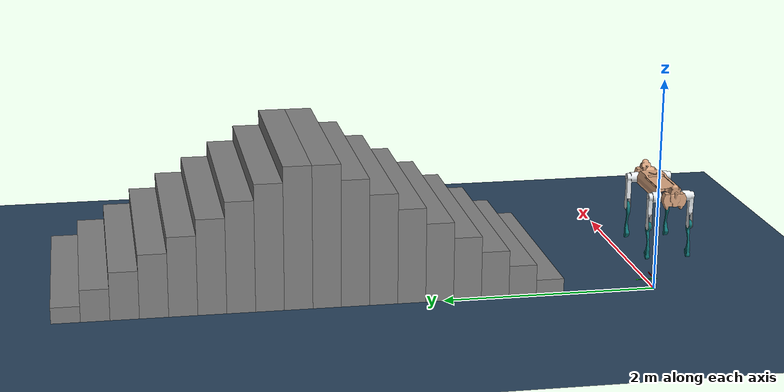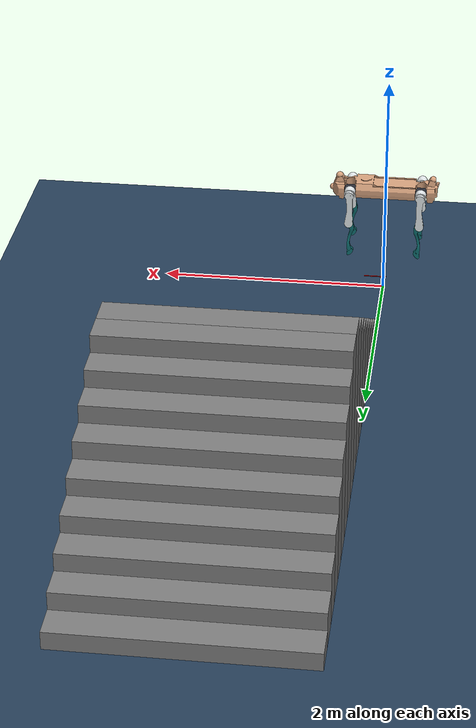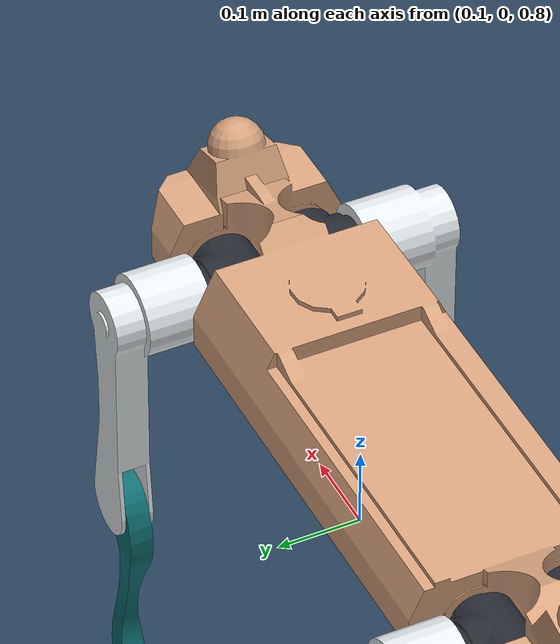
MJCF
<mujoco model="dg_engineer scene">
    <include file="dg_engineer.xml"/>
    <statistic center="0 0 0.1" extent="0.8"/>
    <visual>
        <headlight diffuse="0.6 0.6 0.6" ambient="0.3 0.3 0.3" specular="0 0 0"/>
        <rgba haze="0.15 0.25 0.35 1"/>
        <global azimuth="-130" elevation="-20"/>
    </visual>
    <asset>
        <texture type="skybox" builtin="gradient" rgb1="0.3 0.5 0.7" rgb2="0 0 0" width="512" height="3072"/>
        <texture type="2d" name="groundplane" builtin="checker" mark="edge" rgb1="0.2 0.3 0.4" rgb2="0.1 0.2 0.3"
                 markrgb="0.8 0.8 0.8" width="300" height="300"/>
        <material name="groundplane" texture="groundplane" texuniform="true" texrepeat="5 5" reflectance="0.2"/>
    </asset>
    <worldbody>
        <geom name="floor" size="0 0 0.05" type="plane" material="groundplane"/>

        <body mocap="true" name="esti_indicator" pos="0.0 0.0 0.1">
            <site pos="0 0 0.075" size="0.003 0.003 0.1" type="box" name="mocap_left_site1" rgba="0 0 1 1"/>
            <site pos="0 0.075 0" size="0.003 0.1 0.003" type="box" name="mocap_left_site2" rgba="0 1 0 1"/>
            <site pos="0.075 0 0" size="0.1 0.003 0.003" type="box" name="mocap_left_site3" rgba="1 0 0 1"/>
        </body>

        <body mocap="true" name="start_pos" pos="0.0 0.0 0.1">
            <site pos="0 0 0.075" size="0.003 0.003 0.1" type="box" name="start_pos1" rgba="0 0 1 1"/>
            <site pos="0 0.075 0" size="0.003 0.1 0.003" type="box" name="start_pos2" rgba="0 1 0 1"/>
            <site pos="0.075 0 0" size="0.1 0.003 0.003" type="box" name="start_pos3" rgba="1 0 0 1"/>
        </body>

<!--        futian stairs-->
        <geom size="1 0.13 0.075" pos="1 1 0.075" quat="1 0 0 0" type="box" priority="2" condim="6" solimp="0.5 0.95 0.001 0.5 2"
              friction="0.8 0.02 0.01" group="1"/>
        <geom size="1 0.13 0.15" pos="1 1.26 0.15" quat="1 0 0 0" type="box" priority="2" condim="6" solimp="0.5 0.95 0.001 0.5 2"
              friction="0.8 0.02 0.01" group="1"/>
        <geom size="1 0.13 0.225" pos="1 1.52 0.225" quat="1 0 0 0" type="box" priority="2" condim="6" solimp="0.5 0.95 0.001 0.5 2"
              friction="0.8 0.02 0.01" group="1"/>
        <geom size="1 0.13 0.3" pos="1 1.78 0.3" quat="1 0 0 0" type="box" priority="2" condim="6" solimp="0.5 0.95 0.001 0.5 2"
              friction="0.8 0.02 0.01" group="1"/>
        <geom size="1 0.13 0.375" pos="1 2.04 0.375" quat="1 0 0 0" type="box" priority="2" condim="6" solimp="0.5 0.95 0.001 0.5 2"
              friction="0.8 0.02 0.01" group="1"/>
        <geom size="1 0.13 0.45" pos="1 2.3 0.45" quat="1 0 0 0" type="box" priority="2" condim="6" solimp="0.5 0.95 0.001 0.5 2"
              friction="0.8 0.02 0.01" group="1"/>
        <geom size="1 0.13 0.525" pos="1 2.56 0.525" quat="1 0 0 0" type="box" priority="2" condim="6" solimp="0.5 0.95 0.001 0.5 2"
              friction="0.8 0.02 0.01" group="1"/>
        <geom size="1 0.13 0.6" pos="1 2.82 0.6" quat="1 0 0 0" type="box" priority="2" condim="6" solimp="0.5 0.95 0.001 0.5 2"
              friction="0.8 0.02 0.01" group="1"/>
        <geom size="1 0.13 0.675" pos="1 3.08 0.675" quat="1 0 0 0" type="box" priority="2" condim="6" solimp="0.5 0.95 0.001 0.5 2"
              friction="0.8 0.02 0.01" group="1"/>

        <geom size="1 0.13 0.075" pos="1 5.42 0.075" quat="1 0 0 0" type="box" priority="2" condim="6" solimp="0.5 0.95 0.001 0.5 2"
              friction="0.8 0.02 0.01" group="1"/>
        <geom size="1 0.13 0.15" pos="1  5.16 0.15" quat="1 0 0 0" type="box" priority="2" condim="6" solimp="0.5 0.95 0.001 0.5 2"
              friction="0.8 0.02 0.01" group="1"/>
        <geom size="1 0.13 0.225" pos="1 4.9 0.225" quat="1 0 0 0" type="box" priority="2" condim="6" solimp="0.5 0.95 0.001 0.5 2"
              friction="0.8 0.02 0.01" group="1"/>
        <geom size="1 0.13 0.3" pos="1 4.64 0.3" quat="1 0 0 0" type="box" priority="2" condim="6" solimp="0.5 0.95 0.001 0.5 2"
              friction="0.8 0.02 0.01" group="1"/>
        <geom size="1 0.13 0.375" pos="1 4.38 0.375" quat="1 0 0 0" type="box" priority="2" condim="6" solimp="0.5 0.95 0.001 0.5 2"
              friction="0.8 0.02 0.01" group="1"/>
        <geom size="1 0.13 0.45" pos="1 4.12 0.45" quat="1 0 0 0" type="box" priority="2" condim="6" solimp="0.5 0.95 0.001 0.5 2"
              friction="0.8 0.02 0.01" group="1"/>
        <geom size="1 0.13 0.525" pos="1 3.86 0.525" quat="1 0 0 0" type="box" priority="2" condim="6" solimp="0.5 0.95 0.001 0.5 2"
              friction="0.8 0.02 0.01" group="1"/>
        <geom size="1 0.13 0.6" pos="1 3.6 0.6" quat="1 0 0 0" type="box" priority="2" condim="6" solimp="0.5 0.95 0.001 0.5 2"
              friction="0.8 0.02 0.01" group="1"/>
        <geom size="1 0.13 0.675" pos="1 3.34 0.675" quat="1 0 0 0" type="box" priority="2" condim="6" solimp="0.5 0.95 0.001 0.5 2"
              friction="0.8 0.02 0.01" group="1"/>
    </worldbody>
</mujoco>

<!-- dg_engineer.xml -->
<!--Please note the -->
<mujoco model="dg_engineer">
    <compiler angle="radian" meshdir="assets" autolimits="true" eulerseq="ZYX"/>
    <option cone="elliptic" impratio="100" integrator="implicitfast" timestep="0.001"/>

    <visual>
        <global ellipsoidinertia="true"/>
    </visual>
    <!--    mujoco default properties-->
    <default>
        <default class="dg_engineer">
            <geom friction="0.6" margin="0.00001" condim="1"/>
            <!--            armature: inertia of rotors; joint global axis 0.0000097913844*gr^2-->
            <joint axis="0 1 0" damping="0.01" armature="0.0092" frictionloss="0.01" actuatorfrcrange="-43 43"/>
            <default class="abad">
                <!--                joint range-->
                <joint pos="0 0 0" axis="1 0 0" range="-1.0472 1.0472"/>
                <!--                control position -->
                <motor ctrlrange="-43 43"/>
            </default>
            <default class="hip">
                <joint range="-3.1415926 3.1415926"/>
                <motor ctrlrange="-43 43"/>
            </default>
            <default class="knee">
                <joint range="-2.9 2.9"/>
                <!--                output torque range, knees with larger gear ratio-->
                <motor forcerange="-86 86" ctrlrange="-86 86"/>
            </default>
            <!--            visual mesh for sensors and markers-->
            <default class="visual">
                <geom type="mesh" contype="0" conaffinity="0" group="2"/>
            </default>
            <!--            build collision model-->
            <default class="collision">
                <geom group="3" type="capsule"/>
                <default class="foot">
                    <geom type="sphere" size="0.024" priority="1" condim="6"
                          friction="0.5 0.02 0.01"
                          pos="0 0 -0.191"/>
                </default>
                <!--                body is based on local frame-->
                <default class="thigh_fl1">
                    <geom size="0.048 0.05685" pos="0 0.05735 0" quat="1 1 0 0" type="cylinder"/>
                </default>
                <default class="thigh_fl2">
                    <geom size="0.025 0.08295" pos="0 0.1282 -0.10795" quat="1 0 0 0" type="capsule"/>
                </default>

                <default class="thigh_fr1">
                    <geom size="0.048 0.05685" pos="0 -0.05735 0" quat="1 1 0 0" type="cylinder"/>
                </default>
                <default class="thigh_fr2">
                    <geom size="0.025 0.08295" pos="0 -0.1282 -0.10795" quat="1 0 0 0" type="capsule"/>
                </default>

                <default class="thigh_rl1">
                    <geom size="0.048 0.05685" pos="0 0.05735 0" quat="1 1 0 0" type="cylinder"/>
                </default>
                <default class="thigh_rl2">
                    <geom size="0.025 0.08295" pos="0 0.1282 -0.10795" quat="1 0 0 0" type="capsule"/>
                </default>

                <default class="thigh_rr1">
                    <geom size="0.048 0.05685" pos="0 -0.05735 0" quat="1 1 0 0" type="cylinder"/>
                </default>
                <default class="thigh_rr2">
                    <geom size="0.025 0.08295" pos="0 -0.1282 -0.10795" quat="1 0 0 0" type="capsule"/>
                </default>

                <default class="calf">
                    <geom size="0.01 0.0855" pos="0 0 -0.0955" quat="1 0 0 0" type="capsule"/>
                </default>
            </default>
        </default>
    </default>

    <asset>
        <material name="dg_engineer" rgba="0.1 0.1 0.1 1"/>
        <mesh class="dg_engineer" file="base_link.STL"/>
        <mesh class="dg_engineer" file="fl_abad_link.STL"/>
        <mesh class="dg_engineer" file="fl_hip_link.STL"/>
        <mesh class="dg_engineer" file="fl_knee_link.STL"/>
        <mesh class="dg_engineer" file="fr_abad_link.STL"/>
        <mesh class="dg_engineer" file="fr_hip_link.STL"/>
        <mesh class="dg_engineer" file="fr_knee_link.STL"/>
        <mesh class="dg_engineer" file="rl_abad_link.STL"/>
        <mesh class="dg_engineer" file="rl_hip_link.STL"/>
        <mesh class="dg_engineer" file="rl_knee_link.STL"/>
        <mesh class="dg_engineer" file="rr_abad_link.STL"/>
        <mesh class="dg_engineer" file="rr_hip_link.STL"/>
        <mesh class="dg_engineer" file="rr_knee_link.STL"/>
    </asset>

    <worldbody>
        <body name="base" pos="0 0 1.0" childclass="dg_engineer">
            <camera name="tracking" mode="trackcom" pos="0 -1 0.8" xyaxes="1 0 0 0 1 1"/>
            <!--            type of the site is sphere by default-->
            <site name="head" pos="0.3 0 0" rgba="1 0 0 1" size="0.02" group="0"/>
            <inertial pos="0.02677303 0.000 0.00632505"
                      mass="21.5654" fullinertia="0.10767656 2.82545723 2.85571634 0.00000033 -0.00871520 -0.00000024"/>
            <freejoint/>
            <geom class="visual" pos="0 0.0 0" mesh="base_link" rgba="0.847058824 0.643137255 0.498039216 1"/>
            <geom class="collision" type="box" size="0.2623 0.125 0.056"/>
<!--            &lt;!&ndash;            build four abad motors&ndash;&gt;-->
            <geom class="collision" type="sphere" pos="0.3905 -0.060 -0.0718" size="0.020"/>
            <geom class="collision" type="sphere" pos="-0.3905 -0.060 -0.0718" size="0.020"/>
            <geom class="collision" type="sphere" pos="0.3905 0.060 -0.0718" size="0.020"/>
            <geom class="collision" type="sphere" pos="-0.3905 0.060 -0.0718" size="0.020"/>
<!--            &lt;!&ndash;            build the pads&ndash;&gt;-->
            <site name="imu" pos="0 0 0"/>
            <body name="fr_abad" pos="0.314 -0.050 0" quat="1 0 0 0">
                <inertial pos="-0.00001787 -0.00607236 -0.00008968"
                          mass="0.7766" fullinertia="0.00066364 0.00093712 0.001006375 0 0 -0.00000289"/>
                <site name="fr_abad_torque_site" pos="0 0 0"/>
                <joint class="abad" name="fr_abad_joint"/>
                <geom class="visual" mesh="fr_abad_link" quat="1 0 0 0" rgba="0.152941176 0.160784314 0.196078431 1"/>
                <body name="fr_hip" pos="0 -0.1408 0" quat="1 0 0 0">
                    <inertial pos="-0.00142239 0.0245184 -0.06737029" mass="2.1028"
                              fullinertia="0.03392455 0.03116087 0.00483257 0.00001021 -0.00038283 0.00004691"/>

                    <site name="fr_hip_torque_site" pos="0 0 0"/>
                    <joint class="hip" name="fr_hip_joint"/>
                    <geom class="visual" mesh="fr_hip_link" rgba="0.905882353 0.925490196 0.937254902 1"/>
                    <body name="fr_knee" pos="0.0 0.0 -0.272">
                        <inertial pos="-0.00804831 0.00000107 -0.12689414"
                                  mass="0.4842"
                                  fullinertia="0.01527064 0.01543121 0.00022068 0 -0.00063844 0.00000003"/>
                        <joint class="knee" name="fr_knee_joint"/>
                        <site name="fr_knee_torque_site" pos="0 0 0"/>
                        <geom class="visual" mesh="fr_knee_link" rgba="0.058823529 0.443137255 0.450980392 1"/>
                        <geom name="fr_calf_collision" type="mesh" mesh="fr_knee_link" priority="1" condim="6" solimp="0.5 0.95 0.001 0.5 2"
                              friction="0.8 0.02 0.01" group="3"/>
                        <site name="fr_foot_site" rgba="0.941176471 0.364705882 0.368627451 1" pos="0 0 -0.272"
                              type="sphere" size="0.024" group="3"/>
                    </body>
                </body>
            </body>

            <body name="fl_abad" pos="0.314 0.050 0" quat="1 0 0 0">
                <inertial pos="0.00001787 0.00607236 -0.00008968"
                          mass="0.7766" fullinertia="0.00066364 0.00093712 0.001006375 0 0 0.00000289"/>
                <joint class="abad" name="fl_abad_joint"/>
                <site name="fl_abad_torque_site" pos="0 0 0"/>
                <geom class="visual" mesh="fl_abad_link" quat="1 0 0 0" rgba="0.152941176 0.160784314 0.196078431 1"/>
                <body name="fl_hip" pos="0 0.1408 0" quat="1 0 0 0">
                    <inertial pos="-0.00142239 -0.0245184 -0.06737029" mass="2.1028"
                              fullinertia="0.03392455 0.03116087 0.00483257 -0.00001021 -0.00038283 -0.00004691"/>
                    <joint class="hip" name="fl_hip_joint"/>
                    <site name="fl_hip_torque_site" pos="0 0 0"/>
                    <geom class="visual" mesh="fl_hip_link" rgba="0.905882353 0.925490196 0.937254902 1"/>
                    <body name="fl_knee" pos="0.0 0.0 -0.272">
                        <inertial pos="-0.00804831 0.00000107 -0.12689414"
                                  mass="0.4842"
                                  fullinertia="0.01527064 0.01543121 0.00022068 0 -0.00063844 0.00000002"/>
                        <joint class="knee" name="fl_knee_joint"/>
                        <site name="fl_knee_torque_site" pos="0 0 0"/>
                        <geom class="visual" mesh="fl_knee_link" rgba="0.058823529 0.443137255 0.450980392 1"/>
                        <geom name="fl_calf_collision" type="mesh" mesh="fl_knee_link" priority="1" condim="6" solimp="0.5 0.95 0.001 0.5 2"
                              friction="0.6 0.02 0.01" group="3"/>
                        <site name="fl_foot_site" rgba="0.941176471 0.364705882 0.368627451 1" pos="0 0 -0.272"
                              type="sphere" size="0.024" group="3"/>
                    </body>
                </body>
            </body>

            <body name="rr_abad" pos="-0.314 -0.050 0" quat="1 0 0 0">
                <inertial pos="-0.00001787 -0.00607236 -0.00008968"
                          mass="0.7766" fullinertia="0.00066364 0.00093712 0.001006375 0 0 -0.00000289"/>
                <joint class="abad" name="rr_abad_joint"/>
                <site name="rr_abad_torque_site" pos="0 0 0"/>
                <geom class="visual" mesh="rr_abad_link" quat="1 0 0 0" rgba="0.152941176 0.160784314 0.196078431 1"/>
                <body name="rr_hip" pos="0 -0.1408 0">
                    <inertial pos="0.00142239 0.0245184 -0.06737029" mass="2.1028"
                              fullinertia="0.03392455 0.03116087 0.00483257 -0.00001021 0.00038283 0.00004691"/>
                    <joint class="hip" name="rr_hip_joint"/>
                    <site name="rr_hip_torque_site" pos="0 0 0"/>
                    <geom class="visual" mesh="rr_hip_link" rgba="0.905882353 0.925490196 0.937254902 1"/>
                    <body name="rr_knee" pos="0.0 0.0 -0.272">
                        <inertial pos="0.00804831 -0.00000107 -0.12689414" mass="0.4842"
                                  fullinertia="0.01527064 0.01543121 0.00022068 0 0.00063844 -0.00000002"/>
                        <joint class="knee" name="rr_knee_joint"/>
                        <site name="rr_knee_torque_site" pos="0 0 0"/>
                        <geom class="visual" mesh="rr_knee_link" rgba="0.058823529 0.443137255 0.450980392 1"/>
                        <geom name="rr_calf_collision" type="mesh" mesh="rr_knee_link" priority="1" condim="6" solimp="0.5 0.95 0.001 0.5 2"
                              friction="0.6 0.02 0.01" group="3"/>
                        <site name="rr_foot_site" rgba="0.941176471 0.364705882 0.368627451 1" pos="0 0 -0.272"
                              type="sphere" size="0.024" group="3"/>
                    </body>
                </body>
            </body>

            <body name="rl_abad" pos="-0.314 0.050 0" quat="1 0 0 0">
                <inertial pos="0.00001787 0.00607236 -0.00008968"
                          mass="0.7766" fullinertia="0.00066364 0.00093712 0.001006375 0 0 0.00000289"/>
                <joint class="abad" name="rl_abad_joint"/>
                <site name="rl_abad_torque_site" pos="0 0 0"/>
                <geom class="visual" mesh="rl_abad_link" quat="1 0 0 0" rgba="0.152941176 0.160784314 0.196078431 1"/>

                <body name="rl_hip" pos="0 0.1408 0" quat="1 0 0 0">
                    <inertial pos="0.00142239 -0.0245184 -0.06737029" mass="2.1028"
                              fullinertia="0.03392455 0.03116087 0.00483257 0.00001021 0.00038283 -0.00004691"/>
                    <joint class="hip" name="rl_hip_joint"/>
                    <site name="rl_hip_torque_site" pos="0 0 0"/>
                    <geom class="visual" mesh="rl_hip_link" rgba="0.905882353 0.925490196 0.937254902 1"/>
                    <body name="rl_knee" pos="0.0 0.0 -0.272">
                        <inertial pos="0.00804831 -0.00000107 -0.12689414"
                                  mass="0.4842"
                                  fullinertia="0.01527064 0.01543121 0.00022068 0 0.00063844 -0.00000002"/>
                        <joint class="knee" name="rl_knee_joint"/>
                        <site name="rl_knee_torque_site" pos="0 0 0"/>
                        <geom class="visual" mesh="rl_knee_link" rgba="0.058823529 0.443137255 0.450980392 1"/>
                        <geom name="rl_calf_collision" type="mesh" mesh="rl_knee_link" priority="1" condim="6" solimp="0.5 0.95 0.001 0.5 2"
                              friction="0.6 0.02 0.01" group="3"/>
                        <site name="rl_foot_site" rgba="0.941176471 0.364705882 0.368627451 1" pos="0 0 -0.272"
                              type="sphere" size="0.024" group="3"/>
                    </body>
                </body>
            </body>
        </body>
    </worldbody>

    <actuator>
        <motor class="abad" name="FR_ABAD" joint="fr_abad_joint"/>
        <motor class="hip" name="FR_HIP" joint="fr_hip_joint"/>
        <motor class="knee" name="FR_KNEE" joint="fr_knee_joint"/>
        <motor class="abad" name="FL_ABAD" joint="fl_abad_joint"/>
        <motor class="hip" name="FL_HIP" joint="fl_hip_joint"/>
        <motor class="knee" name="FL_KNEE" joint="fl_knee_joint"/>
        <motor class="abad" name="RR_ABAD" joint="rr_abad_joint"/>
        <motor class="hip" name="RR_HIP" joint="rr_hip_joint"/>
        <motor class="knee" name="RR_KNEE" joint="rr_knee_joint"/>
        <motor class="abad" name="RL_ABAD" joint="rl_abad_joint"/>
        <motor class="hip" name="RL_HIP" joint="rl_hip_joint"/>
        <motor class="knee" name="RL_KNEE" joint="rl_knee_joint"/>
    </actuator>
    <sensor>
        <gyro name="body_gyro" site="imu"/>
        <framequat name="body_quat" objtype="site" objname="imu"/>
        <accelerometer name="body_acc" site="imu"/>
        <torque name="fr_abad_torque_sensor" site="fr_abad_torque_site"/>
        <torque name="fr_hip_torque_sensor" site="fr_hip_torque_site"/>
        <torque name="fr_knee_torque_sensor" site="fr_knee_torque_site"/>

        <torque name="fl_abad_torque_sensor" site="fl_abad_torque_site"/>
        <torque name="fl_hip_torque_sensor" site="fl_hip_torque_site"/>
        <torque name="fl_knee_torque_sensor" site="fl_knee_torque_site"/>

        <torque name="rr_abad_torque_sensor" site="rr_abad_torque_site"/>
        <torque name="rr_hip_torque_sensor" site="rr_hip_torque_site"/>
        <torque name="rr_knee_torque_sensor" site="rr_knee_torque_site"/>

        <torque name="rl_abad_torque_sensor" site="rl_abad_torque_site"/>
        <torque name="rl_hip_torque_sensor" site="rl_hip_torque_site"/>
        <torque name="rl_knee_torque_sensor" site="rl_knee_torque_site"/>
    </sensor>

    <keyframe>
        <key name="home"
             qpos="0 0 0.25 1 0 0 0 0.0 1.57086 -2.9 0 1.57086 -2.9 -0.0 -1.57086 2.9 0.0 -1.57086 2.9"/>
    </keyframe>
</mujoco>
